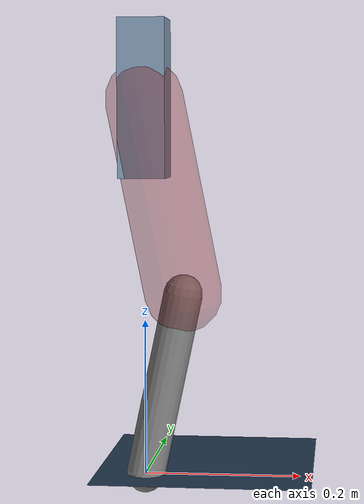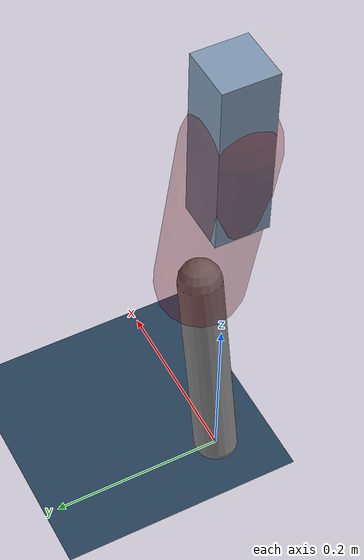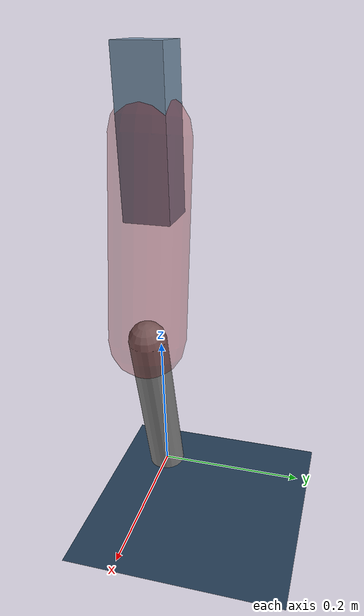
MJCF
<mujoco model="Hopper2D">
	<compiler inertiafromgeom="true" angle="radian" />
	<option timestep="0.001" integrator="implicit" cone="elliptic" solver="Newton" tolerance="1e-10" />

	<default>
		<geom contype="1" conaffinity="1" condim="3" friction="2 0.005 0.0001" solref="0.005 1" />
		<joint limited="true" damping="0.1" />
	</default>

	<asset>
		<texture name="skybox" type="skybox" builtin="gradient" rgb1=".4 .6 .8" rgb2="0 0 0" width="800" height="800" />
		<texture name="grid" type="2d" builtin="checker" rgb1=".1 .2 .3" rgb2=".2 .3 .4" width="300" height="300" mark="edge" markrgb=".2 .3 .4" />
		<material name="ground" texture="grid" texrepeat="1 1" texuniform="true" reflectance="0.1" />
		<material name="leg" rgba="0.5 0.6 0.7 1" />
	</asset>

	<worldbody>

		<geom name="floor" type="plane" size="5 5 0.25" material="ground" />

		<light directional="false" diffuse="0.8 0.8 0.8" specular="0.3 0.3 0.3" pos="0 0 2" dir="0 0 -1" />
		<light mode="targetbodycom" target="base" directional="false" diffuse="0.8 0.8 0.8" specular="0.3 0.3 0.3" pos="0 0 2" dir="0 0 -1" />

		<camera name="fixed" pos="0 -2 1" xyaxes="1 0 0 0 0 1" />
		<camera name="tracking" mode="trackcom" pos="0 -3 1" />

		<body name="root" pos="0 0 0.4828168770858319">
			<joint name="slide_x" type="slide" axis="1 0 0" range="-100 100" />
			<joint name="slide_z" type="slide" axis="0 0 1" range="0 10" />

			<body name="base" pos="0 0 0">
				<geom name="torso" type="box" size="0.03 0.03 0.1" mass="2.971" material="leg" />

				<body name="link1" pos="0 0 0" euler="0 1.374283741016324 0">
					<joint type="hinge" axis="0 -1 0" pos="0 0 0" name="hinge1" limited="true" range="-3.14 3.14" stiffness="0" damping="0.1" />
					<geom name="thigh" type="capsule" fromto="0 0 0 0.2528523983237379 0 0" size="0.05" rgba="0.5 0 0 0.3" mass="0.8638162356417185" />

					<body name="link2" pos="0.2528523983237379 0 0" euler="0 0.40372899255849765 0">
						<joint type="hinge" axis="0 -1 0" pos="0 0 0" name="hinge2" limited="true" range="-3.14 3.14" stiffness="0" damping="0.1" />
						<geom name="shank" type="capsule" fromto="0 0 0 0.23996447876209395 0 0" size="0.025" mass="0.43426803088588456" />

					</body>
				</body>
			</body>
		</body>
	</worldbody>

	<actuator>
		<motor name="torque1" joint="hinge1" ctrlrange="-168.84862386082227 168.84862386082227" ctrllimited="true" gear="1" />
		<motor name="torque2" joint="hinge2" ctrlrange="-78.66733495412633 78.66733495412633" ctrllimited="true" gear="1" />
	</actuator>
</mujoco>
